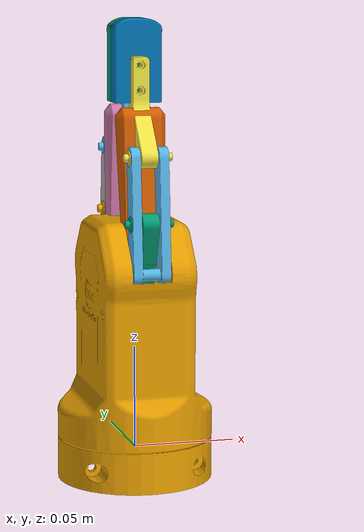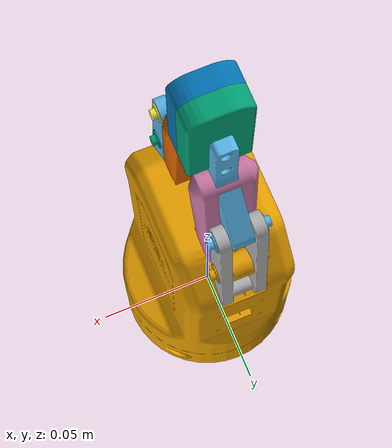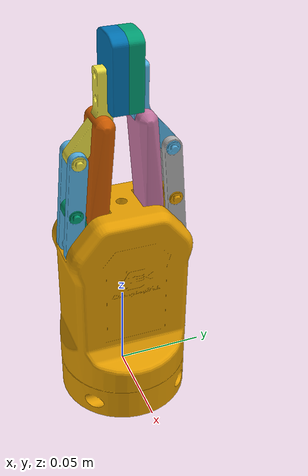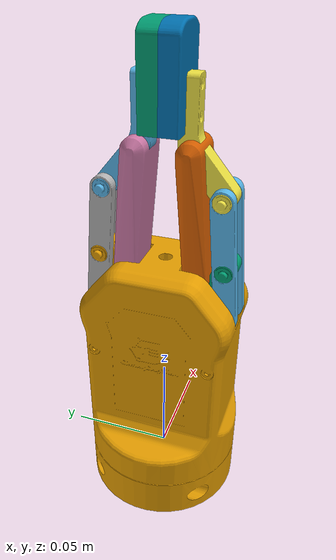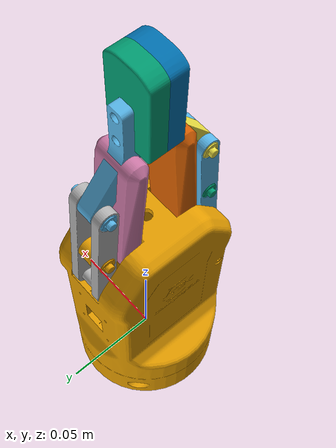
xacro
<?xml version="1.0"?>
<robot name="ChangingTek_$(arg type)" xmlns:xacro="http://www.ros.org/wiki/xacro">

  <xacro:arg name="type" default="AG2F90-C"/>

  <!-- 根据type参数决定使用哪种夹爪 -->
  <xacro:if value="${'$(arg type)' == 'AG2F90-C'}">
    <xacro:include filename="$(find changingtek_description)/xacro/AG2F90-C.xacro"/>
    <xacro:AG2F90-C name=""/>
  </xacro:if>

  <xacro:if value="${'$(arg type)' == 'AG2F90-C-Soft'}">
    <xacro:include filename="$(find changingtek_description)/xacro/AG2F90-C.xacro"/>
    <xacro:AG2F90-C name="" pad="soft"/>
  </xacro:if>

  <xacro:if value="${'$(arg type)' == 'AG2F120S'}">
    <xacro:include filename="$(find changingtek_description)/xacro/AG2F120S.xacro"/>
    <xacro:AG2F120S name=""/>
  </xacro:if>

</robot>

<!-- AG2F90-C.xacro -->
<robot xmlns:xacro="http://ros.org/wiki/xacro">

	<xacro:macro name="AG2F90-C" params="name use_flange:=false pad:=default">
		<xacro:property name="prefix" value="${name + '_' if name else ''}"/>
		<xacro:property name="PI" value="3.1415926535897931"/>

		<xacro:if value="${use_flange}">
			<link name="${prefix}flange">
				<inertial>
					<origin xyz="-0.000388 0.002345 0.0"/>
					<mass value="0.114"/>
					<inertia
						ixx="0.000040105"
						ixy="0.000000214"
						ixz="0.0"
						iyy="0.000085776"
						iyz="0.0"
						izz="0.000054044"/>
				</inertial>
				<visual>
					<geometry>
						<mesh filename="file://$(find changingtek_description)/meshes/AG2F90-C/visual/flange.obj"/>
					</geometry>
				</visual>
			</link>
			<joint name="${prefix}flange_joint" type="fixed">
				<origin xyz="0 0 0.0195"/>
				<parent link="${prefix}flange"/>
				<child link="${prefix}gripper_base"/>
			</joint>
		</xacro:if>

		<link name="${prefix}gripper_base">
			<inertial>
				<origin xyz="3.45207417426861E-05 -0.000141443719270944 0.0415526970475172"/>
				<mass value="0.310447980489903"/>
				<inertia
						ixx="0.000404388005636034"
						ixy="-6.8589621466727E-08"
						ixz="5.84928727366459E-08"
						iyy="0.000296494720930083"
						iyz="-1.79342738400452E-07"
						izz="0.000212447969282029"/>
			</inertial>
			<visual>
				<geometry>
					<mesh filename="file://$(find changingtek_description)/meshes/AG2F90-C/visual/gripper_base.obj"/>
				</geometry>
			</visual>
			<collision>
				<geometry>
					<mesh filename="file://$(find changingtek_description)/meshes/AG2F90-C/collision/base.stl"/>
				</geometry>
			</collision>
		</link>

		<link name="${prefix}left_1_link">
			<inertial>
				<origin xyz="-1.28088127539536E-18 0.0252734640095115 -0.00214040614650292"/>
				<mass value="0.0129014357535444"/>
				<inertia
						ixx="3.35976482443235E-06"
						ixy="-3.3181849198807E-25"
						ixz="-3.35726667613063E-23"
						iyy="1.65185846940368E-07"
						iyz="2.63476012977044E-07"
						izz="3.25394125032869E-06"/>
			</inertial>
			<visual>
				<geometry>
					<mesh filename="file://$(find changingtek_description)/meshes/AG2F90-C/visual/link_1.obj"/>
				</geometry>
			</visual>
			<collision>
				<geometry>
					<mesh filename="file://$(find changingtek_description)/meshes/AG2F90-C/collision/link_1.stl"/>
				</geometry>
			</collision>
		</link>

		<joint name="${prefix}gripper_joint" type="revolute">
			<origin xyz="0 -0.030141 0.090147" rpy="${PI/2} 0 0"/>
			<parent link="${prefix}gripper_base"/>
			<child link="${prefix}left_1_link"/>
			<axis xyz="1 0 0"/>
			<xacro:if value="${pad == 'soft'}">
				<limit lower="0.189" upper="1" effort="50" velocity="${PI}"/>
			</xacro:if>
			<xacro:if value="${pad == 'default' or pad == ''}">
				<limit lower="0" upper="1" effort="50" velocity="${PI}"/>
			</xacro:if>
		</joint>

		<link name="${prefix}left_in_link">
			<inertial>
				<origin xyz="-1.75682286192042E-11 -0.0108820145632286 -0.00405362317350415"/>
				<mass value="0.0134557296415635"/>
				<inertia
						ixx="1.43307384392376E-06"
						ixy="-1.06834632214133E-14"
						ixz="-4.88547951587875E-15"
						iyy="3.88838933230828E-07"
						iyz="-4.1814613493025E-07"
						izz="1.33747540965672E-06"/>
			</inertial>
			<visual>
				<geometry>
					<mesh filename="file://$(find changingtek_description)/meshes/AG2F90-C/visual/in_link.obj"/>
				</geometry>
			</visual>
			<collision>
				<geometry>
					<mesh filename="file://$(find changingtek_description)/meshes/AG2F90-C/collision/in_link.stl"/>
				</geometry>
			</collision>
		</link>

		<joint name="${prefix}left_in_Joint" type="revolute">
			<origin xyz="0 0.023914 -0.0020253"/>
			<parent link="${prefix}left_1_link"/>
			<child link="${prefix}left_in_link"/>
			<axis xyz="-1 0 0"/>
			<limit lower="0" upper="1" effort="50" velocity="${PI}"/>
			<mimic joint="${prefix}gripper_joint" multiplier="0.1" offset="0"/>
		</joint>

		<link name="${prefix}left_up_link">
			<inertial>
				<origin xyz="8.69802213948566E-11 0.0124078988097444 -0.0072525614743534"/>
				<mass value="0.014692561982481"/>
				<inertia
						ixx="2.35283034039115E-06"
						ixy="3.49796352982052E-14"
						ixz="-4.72158842036621E-15"
						iyy="5.8942945477579E-07"
						iyz="7.05860796345956E-07"
						izz="2.07228020361883E-06"/>
			</inertial>
			<visual>
				<geometry>
					<mesh filename="file://$(find changingtek_description)/meshes/AG2F90-C/visual/up_link.obj"/>
				</geometry>
			</visual>
			<collision>
				<geometry>
					<mesh filename="file://$(find changingtek_description)/meshes/AG2F90-C/collision/up_link.stl"/>
				</geometry>
			</collision>
		</link>

		<joint name="${prefix}left_up_Joint" type="revolute">
			<origin xyz="0 0.054804 -0.0046413"/>
			<parent link="${prefix}left_1_link"/>
			<child link="${prefix}left_up_link"/>
			<axis xyz="-1 0 0"/>
			<limit lower="0" upper="1" effort="50" velocity="${PI}"/>
			<mimic joint="${prefix}gripper_joint"/>
		</joint>

		<link name="${prefix}left_Pad_link">
			<inertial>
				<origin xyz="-3.83777509579761E-08 0.00303135276101582 0.0028336970357949"/>
				<mass value="0.0183171479595721"/>
				<inertia
						ixx="2.35683098270332E-06"
						ixy="-4.7353365844279E-12"
						ixz="-9.31433971475514E-13"
						iyy="9.08136064346118E-07"
						iyz="-1.55873132053129E-08"
						izz="3.18448591439082E-06"/>
			</inertial>
			<visual>
				<geometry>
					<xacro:if value="${pad == 'soft'}">
						<mesh filename="file://$(find changingtek_description)/meshes/AG2F90-C/visual/pad_link_soft.obj"/>
					</xacro:if>
					<xacro:if value="${pad == 'default' or pad == ''}">
						<mesh filename="file://$(find changingtek_description)/meshes/AG2F90-C/visual/pad_link.obj"/>
					</xacro:if>
				</geometry>
			</visual>
			<collision>
				<geometry>
					<xacro:if value="${pad == 'soft'}">
						<mesh filename="file://$(find changingtek_description)/meshes/AG2F90-C/visual/pad_link_soft.obj"/>
					</xacro:if>
					<xacro:if value="${pad == 'default' or pad == ''}">
						<mesh filename="file://$(find changingtek_description)/meshes/AG2F90-C/collision/pad_link.stl"/>
					</xacro:if>
				</geometry>
			</collision>
		</link>

		<joint name="${prefix}left_Pad_Joint" type="fixed">
			<origin xyz="0 0.04125 -0.02425"/>
			<parent link="${prefix}left_up_link"/>
			<child link="${prefix}left_Pad_link"/>
		</joint>

		<link name="${prefix}left_2_link">
			<inertial>
				<origin xyz="5.08224485200288E-06 0.0327050710040551 -0.00276963392800038"/>
				<mass value="0.0188752657753052"/>
				<inertia
						ixx="3.4145090175335E-06"
						ixy="-3.3317063785682E-22"
						ixz="-8.3582474326843E-22"
						iyy="2.86837057727488E-07"
						iyz="2.64809197911117E-07"
						izz="3.39111483394506E-06"/>
			</inertial>
			<visual>
				<geometry>
					<mesh filename="file://$(find changingtek_description)/meshes/AG2F90-C/visual/link_2.obj"/>
				</geometry>
			</visual>
			<collision>
				<geometry>
					<mesh filename="file://$(find changingtek_description)/meshes/AG2F90-C/collision/link_2.stl"/>
				</geometry>
			</collision>
		</link>

		<joint name="${prefix}left_2_Joint" type="revolute">
			<origin xyz="0 -0.016 0.107" rpy="${PI/2} 0 0"/>
			<parent link="${prefix}gripper_base"/>
			<child link="${prefix}left_2_link"/>
			<axis xyz="1 0 0"/>
			<limit lower="0" upper="1" effort="50" velocity="${PI}"/>
			<mimic joint="${prefix}gripper_joint"/>
		</joint>

		<link name="${prefix}right_2_link">
			<inertial>
				<origin xyz="1.94651792710713E-17 0.0327174794493866 -0.00277053098700989"/>
				<mass value="0.0188856364479881"/>
				<inertia
						ixx="3.41458781978465E-06"
						ixy="2.85152078238725E-22"
						ixz="9.8903086622122E-22"
						iyy="2.86883124998043E-07"
						iyz="2.64817198026894E-07"
						izz="3.39114800103702E-06"/>
			</inertial>
			<visual>
				<geometry>
					<mesh filename="file://$(find changingtek_description)/meshes/AG2F90-C/visual/link_2.obj"/>
				</geometry>
			</visual>
			<collision>
				<geometry>
					<mesh filename="file://$(find changingtek_description)/meshes/AG2F90-C/collision/link_2.stl"/>
				</geometry>
			</collision>
		</link>

		<joint name="${prefix}right_2_Joint" type="revolute">
			<origin xyz="0 0.016 0.107" rpy="${PI/2} 0 ${PI}"/>
			<parent link="${prefix}gripper_base"/>
			<child link="${prefix}right_2_link"/>
			<axis xyz="1 0 0"/>
			<limit lower="0" upper="1" effort="50" velocity="${PI}"/>
			<mimic joint="${prefix}left_2_Joint"/>
		</joint>

		<link name="${prefix}right_1_link">
			<inertial>
				<origin xyz="-5.25233292439781E-19 0.0252734640095115 -0.00214040614650291"/>
				<mass value="0.0129014357535444"/>
				<inertia
						ixx="3.35976482443235E-06"
						ixy="-3.94978742494071E-23"
						ixz="-2.72484926002331E-23"
						iyy="1.65185846940368E-07"
						iyz="2.63476012977044E-07"
						izz="3.25394125032869E-06"/>
			</inertial>
			<visual>
				<geometry>
					<mesh filename="file://$(find changingtek_description)/meshes/AG2F90-C/visual/link_1.obj"/>
				</geometry>
			</visual>
			<collision>
				<geometry>
					<mesh filename="file://$(find changingtek_description)/meshes/AG2F90-C/collision/link_1.stl"/>
				</geometry>
			</collision>
		</link>

		<joint name="${prefix}right_1_Joint" type="revolute">
			<origin xyz="0 0.030141 0.090147" rpy="${PI/2} 0 ${PI}"/>
			<parent link="${prefix}gripper_base"/>
			<child link="${prefix}right_1_link"/>
			<axis xyz="1 0 0"/>
			<limit lower="0" upper="1" effort="50" velocity="${PI}"/>
			<mimic joint="${prefix}gripper_joint"/>
		</joint>

		<link name="${prefix}right_in_link">
			<inertial>
				<origin xyz="-1.7568261982498E-11 -0.0108820145632292 -0.00405362317350229"/>
				<mass value="0.0134557296415635"/>
				<inertia
						ixx="1.43307384392376E-06"
						ixy="-1.06834687803419E-14"
						ixz="-4.88548199727378E-15"
						iyy="3.88838933230828E-07"
						iyz="-4.1814613493025E-07"
						izz="1.33747540965672E-06"/>
			</inertial>
			<visual>
				<geometry>
					<mesh filename="file://$(find changingtek_description)/meshes/AG2F90-C/visual/in_link.obj"/>
				</geometry>
			</visual>
			<collision>
				<geometry>
					<mesh filename="file://$(find changingtek_description)/meshes/AG2F90-C/collision/in_link.stl"/>
				</geometry>
			</collision>
		</link>

		<joint name="${prefix}right_in_Joint" type="revolute">
			<origin xyz="0 0.023914 -0.0020253"/>
			<parent link="${prefix}right_1_link"/>
			<child link="${prefix}right_in_link"/>
			<axis xyz="-1 0 0"/>
			<limit lower="0" upper="1" effort="50" velocity="${PI}"/>
			<mimic joint="${prefix}right_1_Joint" multiplier="0.1" offset="0"/>
		</joint>

		<link name="${prefix}right_up_link">
			<inertial>
				<origin xyz="8.69814518862609E-11 0.0124078988097266 -0.00725256147435587"/>
				<mass value="0.014692561982481"/>
				<inertia
						ixx="2.35283034039115E-06"
						ixy="3.49796366331572E-14"
						ixz="-4.72158801523363E-15"
						iyy="5.89429454773258E-07"
						iyz="7.05860796343296E-07"
						izz="2.07228020362137E-06"/>
			</inertial>
			<visual>
				<geometry>
					<mesh filename="file://$(find changingtek_description)/meshes/AG2F90-C/visual/up_link.obj"/>
				</geometry>
			</visual>
			<collision>
				<geometry>
					<mesh filename="file://$(find changingtek_description)/meshes/AG2F90-C/collision/up_link.stl"/>
				</geometry>
			</collision>
		</link>

		<joint name="${prefix}right_up_Joint" type="revolute">
			<origin xyz="0 0.054804 -0.0046413"/>
			<parent link="${prefix}right_1_link"/>
			<child link="${prefix}right_up_link"/>
			<axis xyz="-1 0 0"/>
			<limit lower="0" upper="1" effort="50" velocity="${PI}"/>
			<mimic joint="${prefix}right_1_Joint"/>
		</joint>

		<link name="${prefix}right_Pad_link">
			<inertial>
				<origin xyz="-3.83777500494227E-08 0.0030313527610159 0.00283369703564792"/>
				<mass value="0.0366342959191441"/>
				<inertia
						ixx="4.71366196540664E-06"
						ixy="-9.47067316877366E-12"
						ixz="-1.8628679404863E-12"
						iyy="1.81627212869223E-06"
						iyz="-3.11746264105278E-08"
						izz="6.36897182878164E-06"/>
			</inertial>
			<visual>
				<geometry>
					<xacro:if value="${pad == 'soft'}">
						<mesh filename="file://$(find changingtek_description)/meshes/AG2F90-C/visual/pad_link_soft.obj"/>
					</xacro:if>
					<xacro:if value="${pad == 'default' or pad == ''}">
						<mesh filename="file://$(find changingtek_description)/meshes/AG2F90-C/visual/pad_link.obj"/>
					</xacro:if>
				</geometry>
			</visual>
			<collision>
				<geometry>
					<xacro:if value="${pad == 'soft'}">
						<mesh filename="file://$(find changingtek_description)/meshes/AG2F90-C/visual/pad_link_soft.obj"/>
					</xacro:if>
					<xacro:if value="${pad == 'default' or pad == ''}">
						<mesh filename="file://$(find changingtek_description)/meshes/AG2F90-C/collision/pad_link.stl"/>
					</xacro:if>
				</geometry>
			</collision>
		</link>

		<joint name="${prefix}right_Pad_Joint" type="fixed">
			<origin xyz="0 0.04125 -0.02425"/>
			<parent link="${prefix}right_up_link"/>
			<child link="${prefix}right_Pad_link"/>
		</joint>

	</xacro:macro>
</robot>
